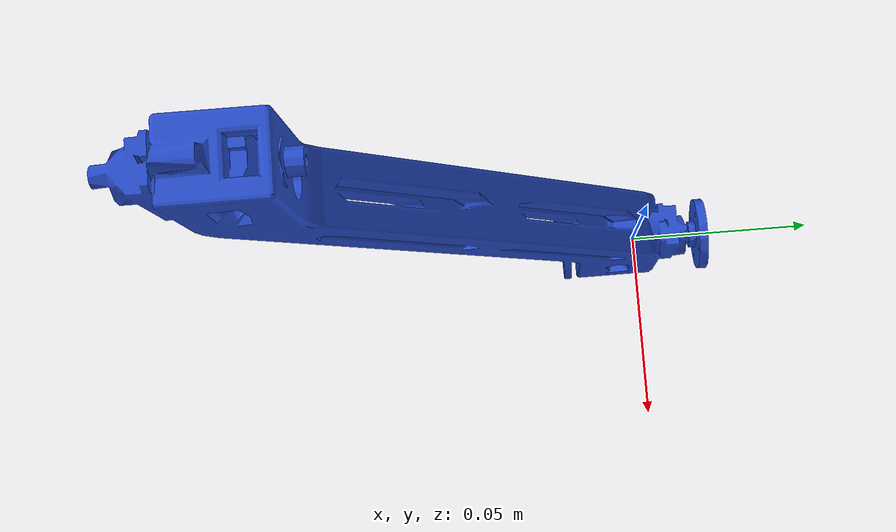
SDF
<?xml version="1.0" ?>

  <sdf version="1.5">
    <model name="usl_bv2_second_tilt1">
      <link name='tilt'>
      <pose>0.0 -0.0 0.0 0 -0 0</pose>
      <inertial>
        <pose>0 0 0 0 -0 0</pose>
        <mass>0.2</mass>
        <inertia>
          <ixx>0.04</ixx>
          <ixy>0</ixy>
          <ixz>0</ixz>
          <iyy>0.1</iyy>
          <iyz>0</iyz>
          <izz>0.01</izz>
        </inertia>
      </inertial>
      <collision name='tilt_collision'>
        <pose>0 0 0 0 -0 0</pose>
        <geometry>
          <box>
            <size>0.0 0.0 0.0</size>
          </box>
        </geometry>
        <max_contacts>1</max_contacts>
      </collision>
      <visual name='tilt_visual'>
        <pose>0 0 0 0 -0 0</pose>
        <geometry>
          <mesh>
            <uri>model://usl_bv2_second_tilt1/meshes/tilt1.dae</uri>
          </mesh>
        </geometry>
        <material>
          <script>
            <name>Gazebo/Blue</name>
            <uri>__default__</uri>
          </script>
        </material>
      </visual>
      <gravity>1</gravity>
      <velocity_decay />
      <self_collide>0</self_collide>
    </link>
  </model>
</sdf>
